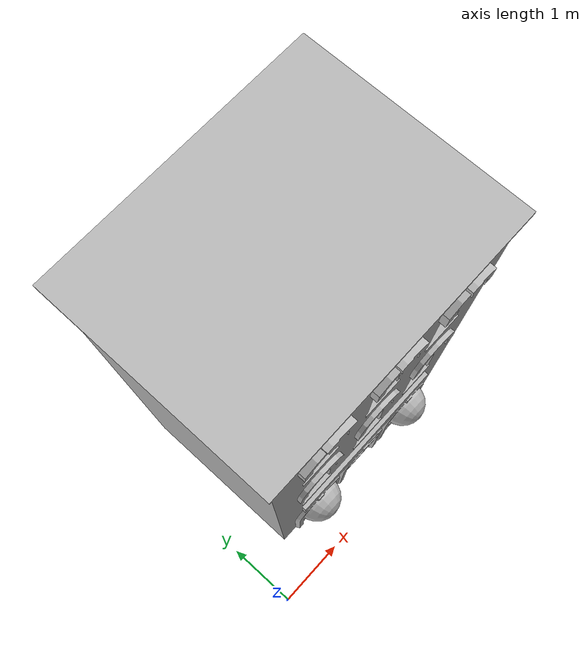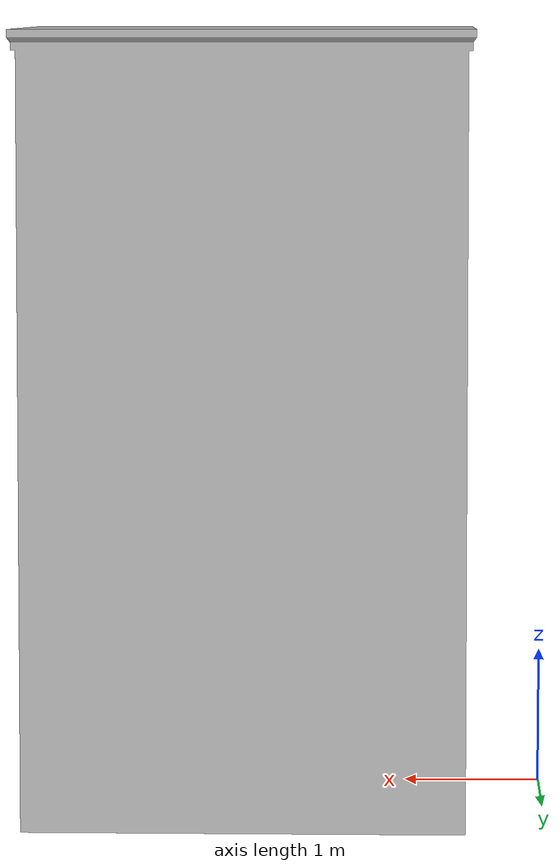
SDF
<?xml version="1.0" ?>
<sdf version="1.6">
  <model name="office_building">
    <pose>2.1 1.8 0.2 0 0 0</pose>
    <static>true</static>
    <link name="link">
      <collision name="collision">
        <pose>1.8 1.8 0.2 0 0 0</pose>
        <geometry>
          <box>
            <size>0.0006844012958 0.0005431646878 0.0013924872736</size>
          </box>
        </geometry>
      </collision>
      <visual name="visual">
        <geometry>
	        <mesh>
            <uri>model://office_building/meshes/office_building.dae</uri>
            <scale>0.444012958 0.4440646878 0.3924872736</scale>
          </mesh>
        </geometry>
      </visual>
    </link>
  </model>
</sdf>
